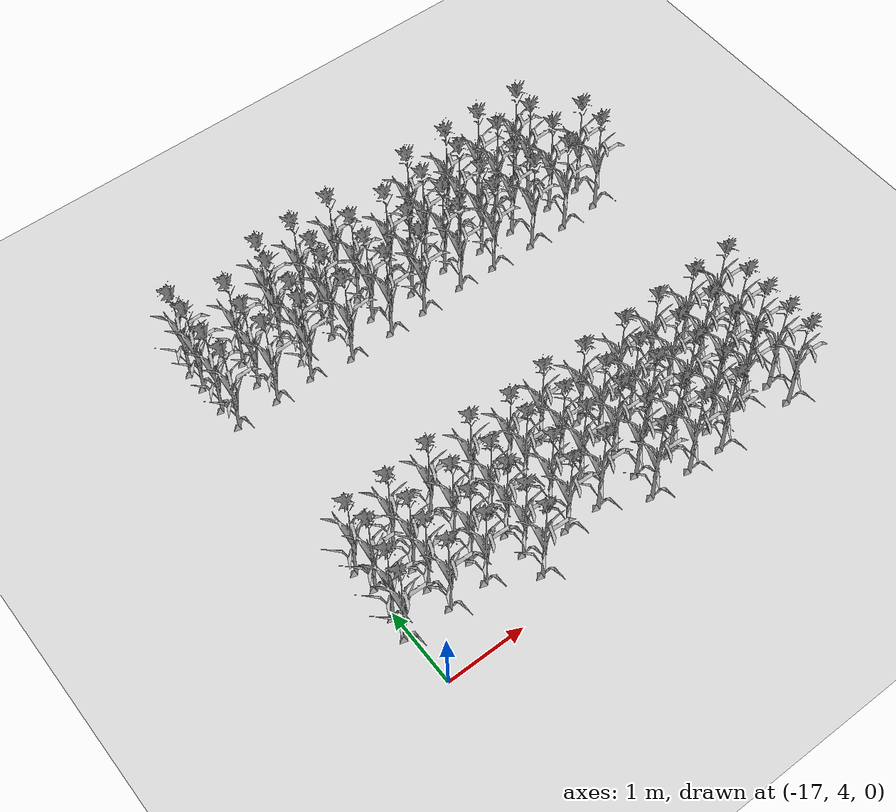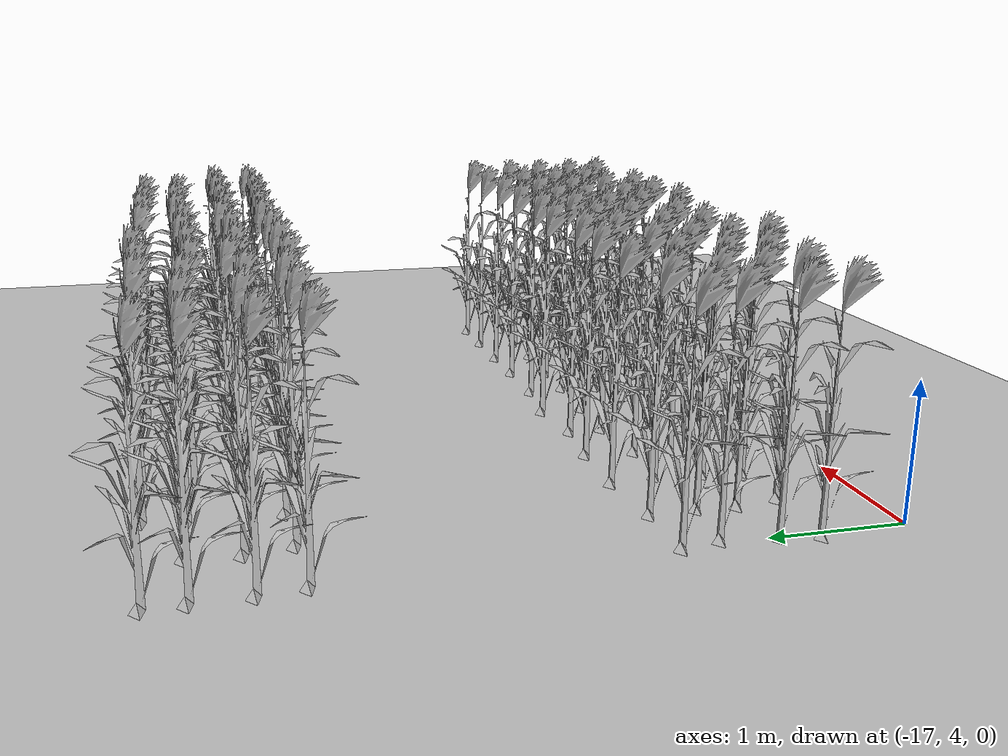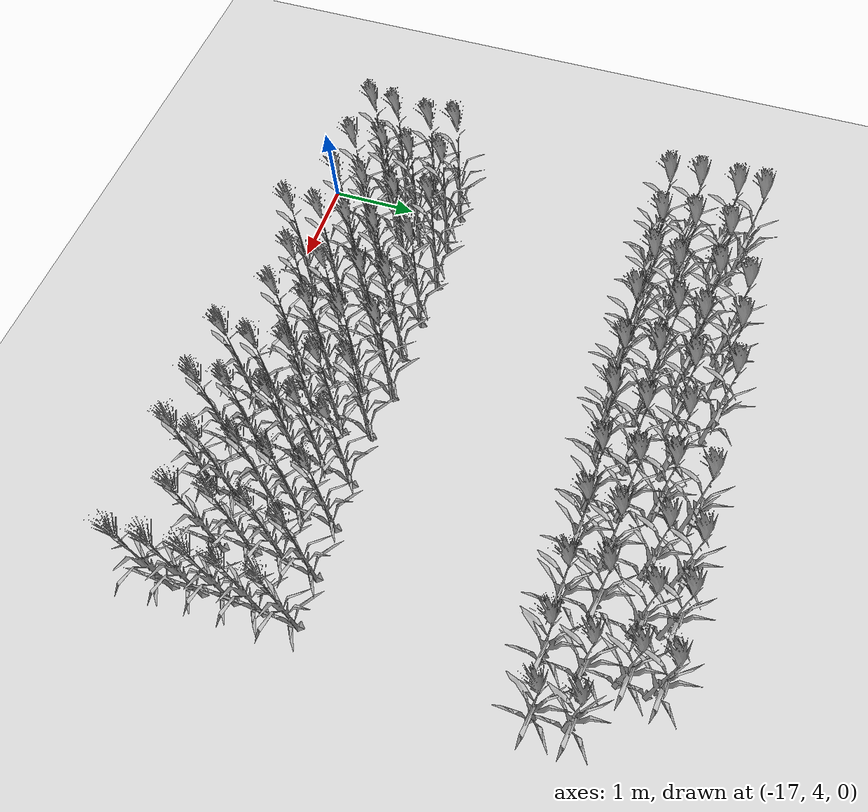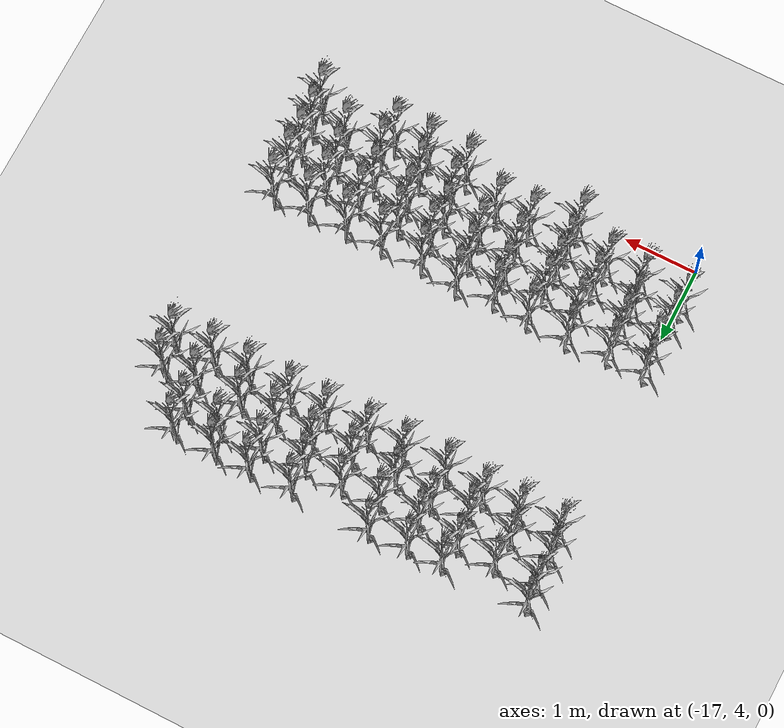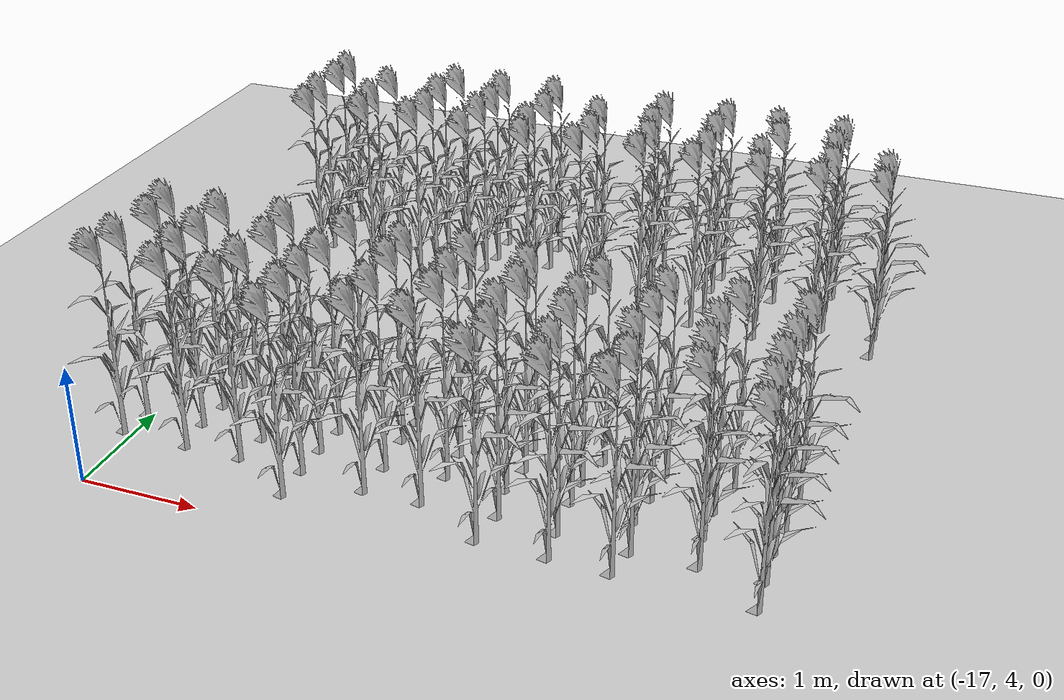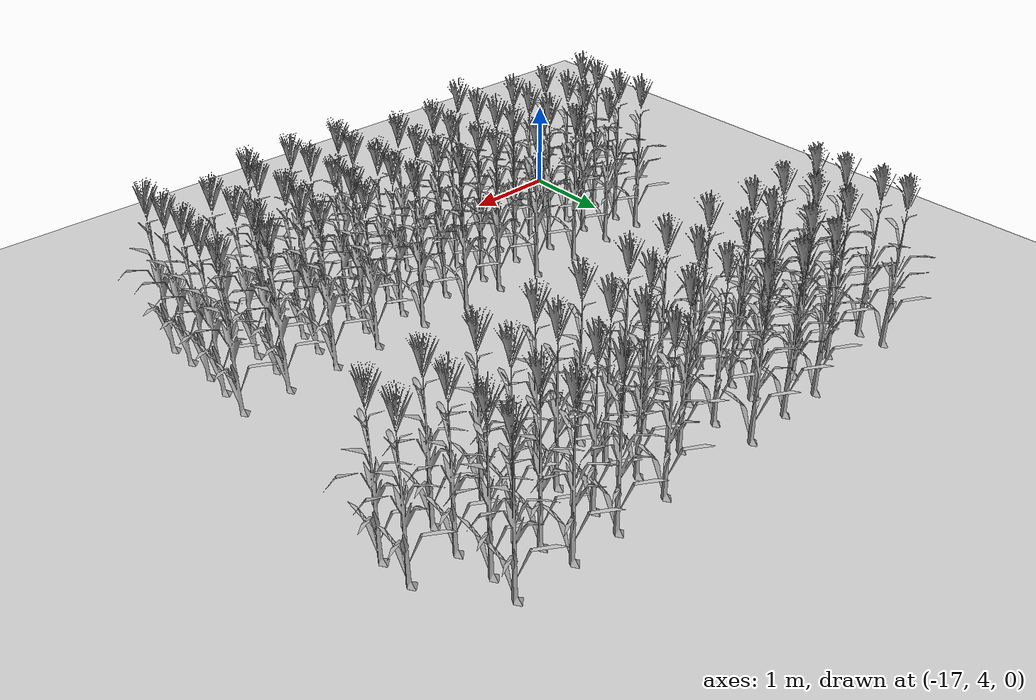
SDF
<sdf version="1.7">
 <world name="farmland_world">
  <model name="ground_plane">
   <static>1</static>
   <link name="link">
    <collision name="collision">
     <geometry><plane><normal>0 0 1</normal><size>40.0 40.0</size></plane></geometry>
     <surface><friction><ode><mu>100</mu><mu2>50</mu2></ode></friction></surface>
    </collision>
    <visual name="visual">
     <cast_shadows>0</cast_shadows>
     <geometry><plane><normal>0 0 1</normal><size>40.0 40.0</size></plane></geometry>
     <material>
      <script><uri>file://media/materials/scripts/gazebo.material</uri><name>Gazebo/Grey</name></script>
     </material>
    </visual>
   </link>
  </model>
  <model name="tree_3_2848">
   <static>1</static>
   <link name="link">
    <collision name="collision">
     <geometry><mesh><uri>model://Corn_low_poly/corn.obj</uri><scale>1 1 1</scale></mesh></geometry>
     <surface><friction><ode><mu>100</mu><mu2>50</mu2></ode></friction></surface>
    </collision>
    <visual name="visual">
     <geometry><mesh><uri>model://Corn_low_poly/corn.obj</uri><scale>1 1 1</scale></mesh></geometry>
    </visual>
   </link>
   <pose>-11.787418182871287 4.345683590737765 0 0 0 0</pose>
  </model>
  <model name="tree_3_2850">
   <static>1</static>
   <link name="link">
    <collision name="collision">
     <geometry><mesh><uri>model://Corn_low_poly/corn.obj</uri><scale>1 1 1</scale></mesh></geometry>
     <surface><friction><ode><mu>100</mu><mu2>50</mu2></ode></friction></surface>
    </collision>
    <visual name="visual">
     <geometry><mesh><uri>model://Corn_low_poly/corn.obj</uri><scale>1 1 1</scale></mesh></geometry>
    </visual>
   </link>
   <pose>-12.836769373734384 4.356543003384404 0 0 0 0</pose>
  </model>
  <model name="tree_3_2851">
   <static>1</static>
   <link name="link">
    <collision name="collision">
     <geometry><mesh><uri>model://Corn_low_poly/corn.obj</uri><scale>1 1 1</scale></mesh></geometry>
     <surface><friction><ode><mu>100</mu><mu2>50</mu2></ode></friction></surface>
    </collision>
    <visual name="visual">
     <geometry><mesh><uri>model://Corn_low_poly/corn.obj</uri><scale>1 1 1</scale></mesh></geometry>
    </visual>
   </link>
   <pose>-13.312083223155954 4.364319888794923 0 0 0 0</pose>
  </model>
  <model name="tree_3_2852">
   <static>1</static>
   <link name="link">
    <collision name="collision">
     <geometry><mesh><uri>model://Corn_low_poly/corn.obj</uri><scale>1 1 1</scale></mesh></geometry>
     <surface><friction><ode><mu>100</mu><mu2>50</mu2></ode></friction></surface>
    </collision>
    <visual name="visual">
     <geometry><mesh><uri>model://Corn_low_poly/corn.obj</uri><scale>1 1 1</scale></mesh></geometry>
    </visual>
   </link>
   <pose>-13.866679624383702 4.3677125205263065 0 0 0 0</pose>
  </model>
  <model name="tree_3_2855">
   <static>1</static>
   <link name="link">
    <collision name="collision">
     <geometry><mesh><uri>model://Corn_low_poly/corn.obj</uri><scale>1 1 1</scale></mesh></geometry>
     <surface><friction><ode><mu>100</mu><mu2>50</mu2></ode></friction></surface>
    </collision>
    <visual name="visual">
     <geometry><mesh><uri>model://Corn_low_poly/corn.obj</uri><scale>1 1 1</scale></mesh></geometry>
    </visual>
   </link>
   <pose>-15.440552177565301 4.369589265628956 0 0 0 0</pose>
  </model>
  <model name="tree_3_2872">
   <static>1</static>
   <link name="link">
    <collision name="collision">
     <geometry><mesh><uri>model://Corn_low_poly/corn.obj</uri><scale>1 1 1</scale></mesh></geometry>
     <surface><friction><ode><mu>100</mu><mu2>50</mu2></ode></friction></surface>
    </collision>
    <visual name="visual">
     <geometry><mesh><uri>model://Corn_low_poly/corn.obj</uri><scale>1 1 1</scale></mesh></geometry>
    </visual>
   </link>
   <pose>-11.80729001943103 4.653368368937612 0 0 0 0</pose>
  </model>
  <model name="tree_3_2873">
   <static>1</static>
   <link name="link">
    <collision name="collision">
     <geometry><mesh><uri>model://Corn_low_poly/corn.obj</uri><scale>1 1 1</scale></mesh></geometry>
     <surface><friction><ode><mu>100</mu><mu2>50</mu2></ode></friction></surface>
    </collision>
    <visual name="visual">
     <geometry><mesh><uri>model://Corn_low_poly/corn.obj</uri><scale>1 1 1</scale></mesh></geometry>
    </visual>
   </link>
   <pose>-12.28616912592144 4.6481315816237485 0 0 0 0</pose>
  </model>
  <model name="tree_3_2874">
   <static>1</static>
   <link name="link">
    <collision name="collision">
     <geometry><mesh><uri>model://Corn_low_poly/corn.obj</uri><scale>1 1 1</scale></mesh></geometry>
     <surface><friction><ode><mu>100</mu><mu2>50</mu2></ode></friction></surface>
    </collision>
    <visual name="visual">
     <geometry><mesh><uri>model://Corn_low_poly/corn.obj</uri><scale>1 1 1</scale></mesh></geometry>
    </visual>
   </link>
   <pose>-12.785372539322633 4.629446120698524 0 0 0 0</pose>
  </model>
  <model name="tree_3_2875">
   <static>1</static>
   <link name="link">
    <collision name="collision">
     <geometry><mesh><uri>model://Corn_low_poly/corn.obj</uri><scale>1 1 1</scale></mesh></geometry>
     <surface><friction><ode><mu>100</mu><mu2>50</mu2></ode></friction></surface>
    </collision>
    <visual name="visual">
     <geometry><mesh><uri>model://Corn_low_poly/corn.obj</uri><scale>1 1 1</scale></mesh></geometry>
    </visual>
   </link>
   <pose>-13.348882805030613 4.661099871495268 0 0 0 0</pose>
  </model>
  <model name="tree_3_2876">
   <static>1</static>
   <link name="link">
    <collision name="collision">
     <geometry><mesh><uri>model://Corn_low_poly/corn.obj</uri><scale>1 1 1</scale></mesh></geometry>
     <surface><friction><ode><mu>100</mu><mu2>50</mu2></ode></friction></surface>
    </collision>
    <visual name="visual">
     <geometry><mesh><uri>model://Corn_low_poly/corn.obj</uri><scale>1 1 1</scale></mesh></geometry>
    </visual>
   </link>
   <pose>-13.821121252733908 4.694012933305805 0 0 0 0</pose>
  </model>
  <model name="tree_3_2877">
   <static>1</static>
   <link name="link">
    <collision name="collision">
     <geometry><mesh><uri>model://Corn_low_poly/corn.obj</uri><scale>1 1 1</scale></mesh></geometry>
     <surface><friction><ode><mu>100</mu><mu2>50</mu2></ode></friction></surface>
    </collision>
    <visual name="visual">
     <geometry><mesh><uri>model://Corn_low_poly/corn.obj</uri><scale>1 1 1</scale></mesh></geometry>
    </visual>
   </link>
   <pose>-14.422754243367242 4.643235991660554 0 0 0 0</pose>
  </model>
  <model name="tree_3_2878">
   <static>1</static>
   <link name="link">
    <collision name="collision">
     <geometry><mesh><uri>model://Corn_low_poly/corn.obj</uri><scale>1 1 1</scale></mesh></geometry>
     <surface><friction><ode><mu>100</mu><mu2>50</mu2></ode></friction></surface>
    </collision>
    <visual name="visual">
     <geometry><mesh><uri>model://Corn_low_poly/corn.obj</uri><scale>1 1 1</scale></mesh></geometry>
    </visual>
   </link>
   <pose>-14.888717014696502 4.631099730078305 0 0 0 0</pose>
  </model>
  <model name="tree_3_2879">
   <static>1</static>
   <link name="link">
    <collision name="collision">
     <geometry><mesh><uri>model://Corn_low_poly/corn.obj</uri><scale>1 1 1</scale></mesh></geometry>
     <surface><friction><ode><mu>100</mu><mu2>50</mu2></ode></friction></surface>
    </collision>
    <visual name="visual">
     <geometry><mesh><uri>model://Corn_low_poly/corn.obj</uri><scale>1 1 1</scale></mesh></geometry>
    </visual>
   </link>
   <pose>-15.445006114458977 4.692413783442298 0 0 0 0</pose>
  </model>
  <model name="tree_3_2880">
   <static>1</static>
   <link name="link">
    <collision name="collision">
     <geometry><mesh><uri>model://Corn_low_poly/corn.obj</uri><scale>1 1 1</scale></mesh></geometry>
     <surface><friction><ode><mu>100</mu><mu2>50</mu2></ode></friction></surface>
    </collision>
    <visual name="visual">
     <geometry><mesh><uri>model://Corn_low_poly/corn.obj</uri><scale>1 1 1</scale></mesh></geometry>
    </visual>
   </link>
   <pose>-15.981374665326786 4.67860731526928 0 0 0 0</pose>
  </model>
  <model name="tree_3_2881">
   <static>1</static>
   <link name="link">
    <collision name="collision">
     <geometry><mesh><uri>model://Corn_low_poly/corn.obj</uri><scale>1 1 1</scale></mesh></geometry>
     <surface><friction><ode><mu>100</mu><mu2>50</mu2></ode></friction></surface>
    </collision>
    <visual name="visual">
     <geometry><mesh><uri>model://Corn_low_poly/corn.obj</uri><scale>1 1 1</scale></mesh></geometry>
    </visual>
   </link>
   <pose>-16.463469612664845 4.672492613097983 0 0 0 0</pose>
  </model>
  <model name="tree_3_2882">
   <static>1</static>
   <link name="link">
    <collision name="collision">
     <geometry><mesh><uri>model://Corn_low_poly/corn.obj</uri><scale>1 1 1</scale></mesh></geometry>
     <surface><friction><ode><mu>100</mu><mu2>50</mu2></ode></friction></surface>
    </collision>
    <visual name="visual">
     <geometry><mesh><uri>model://Corn_low_poly/corn.obj</uri><scale>1 1 1</scale></mesh></geometry>
    </visual>
   </link>
   <pose>-17.04998794201496 4.6854122883601965 0 0 0 0</pose>
  </model>
  <model name="tree_3_2896">
   <static>1</static>
   <link name="link">
    <collision name="collision">
     <geometry><mesh><uri>model://Corn_low_poly/corn.obj</uri><scale>1 1 1</scale></mesh></geometry>
     <surface><friction><ode><mu>100</mu><mu2>50</mu2></ode></friction></surface>
    </collision>
    <visual name="visual">
     <geometry><mesh><uri>model://Corn_low_poly/corn.obj</uri><scale>1 1 1</scale></mesh></geometry>
    </visual>
   </link>
   <pose>-11.821602401073118 4.989360754822888 0 0 0 0</pose>
  </model>
  <model name="tree_3_2897">
   <static>1</static>
   <link name="link">
    <collision name="collision">
     <geometry><mesh><uri>model://Corn_low_poly/corn.obj</uri><scale>1 1 1</scale></mesh></geometry>
     <surface><friction><ode><mu>100</mu><mu2>50</mu2></ode></friction></surface>
    </collision>
    <visual name="visual">
     <geometry><mesh><uri>model://Corn_low_poly/corn.obj</uri><scale>1 1 1</scale></mesh></geometry>
    </visual>
   </link>
   <pose>-12.339196353073518 4.982475300204794 0 0 0 0</pose>
  </model>
  <model name="tree_3_2898">
   <static>1</static>
   <link name="link">
    <collision name="collision">
     <geometry><mesh><uri>model://Corn_low_poly/corn.obj</uri><scale>1 1 1</scale></mesh></geometry>
     <surface><friction><ode><mu>100</mu><mu2>50</mu2></ode></friction></surface>
    </collision>
    <visual name="visual">
     <geometry><mesh><uri>model://Corn_low_poly/corn.obj</uri><scale>1 1 1</scale></mesh></geometry>
    </visual>
   </link>
   <pose>-12.861620071958903 4.987703392328394 0 0 0 0</pose>
  </model>
  <model name="tree_3_2899">
   <static>1</static>
   <link name="link">
    <collision name="collision">
     <geometry><mesh><uri>model://Corn_low_poly/corn.obj</uri><scale>1 1 1</scale></mesh></geometry>
     <surface><friction><ode><mu>100</mu><mu2>50</mu2></ode></friction></surface>
    </collision>
    <visual name="visual">
     <geometry><mesh><uri>model://Corn_low_poly/corn.obj</uri><scale>1 1 1</scale></mesh></geometry>
    </visual>
   </link>
   <pose>-13.373198020450442 5.046744431338564 0 0 0 0</pose>
  </model>
  <model name="tree_3_2900">
   <static>1</static>
   <link name="link">
    <collision name="collision">
     <geometry><mesh><uri>model://Corn_low_poly/corn.obj</uri><scale>1 1 1</scale></mesh></geometry>
     <surface><friction><ode><mu>100</mu><mu2>50</mu2></ode></friction></surface>
    </collision>
    <visual name="visual">
     <geometry><mesh><uri>model://Corn_low_poly/corn.obj</uri><scale>1 1 1</scale></mesh></geometry>
    </visual>
   </link>
   <pose>-13.88795014819522 5.025130307146981 0 0 0 0</pose>
  </model>
  <model name="tree_3_2901">
   <static>1</static>
   <link name="link">
    <collision name="collision">
     <geometry><mesh><uri>model://Corn_low_poly/corn.obj</uri><scale>1 1 1</scale></mesh></geometry>
     <surface><friction><ode><mu>100</mu><mu2>50</mu2></ode></friction></surface>
    </collision>
    <visual name="visual">
     <geometry><mesh><uri>model://Corn_low_poly/corn.obj</uri><scale>1 1 1</scale></mesh></geometry>
    </visual>
   </link>
   <pose>-14.374118336510657 5.023883117925202 0 0 0 0</pose>
  </model>
  <model name="tree_3_2902">
   <static>1</static>
   <link name="link">
    <collision name="collision">
     <geometry><mesh><uri>model://Corn_low_poly/corn.obj</uri><scale>1 1 1</scale></mesh></geometry>
     <surface><friction><ode><mu>100</mu><mu2>50</mu2></ode></friction></surface>
    </collision>
    <visual name="visual">
     <geometry><mesh><uri>model://Corn_low_poly/corn.obj</uri><scale>1 1 1</scale></mesh></geometry>
    </visual>
   </link>
   <pose>-14.867754599025726 4.963997628128189 0 0 0 0</pose>
  </model>
  <model name="tree_3_2903">
   <static>1</static>
   <link name="link">
    <collision name="collision">
     <geometry><mesh><uri>model://Corn_low_poly/corn.obj</uri><scale>1 1 1</scale></mesh></geometry>
     <surface><friction><ode><mu>100</mu><mu2>50</mu2></ode></friction></surface>
    </collision>
    <visual name="visual">
     <geometry><mesh><uri>model://Corn_low_poly/corn.obj</uri><scale>1 1 1</scale></mesh></geometry>
    </visual>
   </link>
   <pose>-15.445996530346344 5.001447909934732 0 0 0 0</pose>
  </model>
  <model name="tree_3_2904">
   <static>1</static>
   <link name="link">
    <collision name="collision">
     <geometry><mesh><uri>model://Corn_low_poly/corn.obj</uri><scale>1 1 1</scale></mesh></geometry>
     <surface><friction><ode><mu>100</mu><mu2>50</mu2></ode></friction></surface>
    </collision>
    <visual name="visual">
     <geometry><mesh><uri>model://Corn_low_poly/corn.obj</uri><scale>1 1 1</scale></mesh></geometry>
    </visual>
   </link>
   <pose>-15.94961357791685 4.981257883045574 0 0 0 0</pose>
  </model>
  <model name="tree_3_2905">
   <static>1</static>
   <link name="link">
    <collision name="collision">
     <geometry><mesh><uri>model://Corn_low_poly/corn.obj</uri><scale>1 1 1</scale></mesh></geometry>
     <surface><friction><ode><mu>100</mu><mu2>50</mu2></ode></friction></surface>
    </collision>
    <visual name="visual">
     <geometry><mesh><uri>model://Corn_low_poly/corn.obj</uri><scale>1 1 1</scale></mesh></geometry>
    </visual>
   </link>
   <pose>-16.50794991925876 4.999771540328189 0 0 0 0</pose>
  </model>
  <model name="tree_3_2906">
   <static>1</static>
   <link name="link">
    <collision name="collision">
     <geometry><mesh><uri>model://Corn_low_poly/corn.obj</uri><scale>1 1 1</scale></mesh></geometry>
     <surface><friction><ode><mu>100</mu><mu2>50</mu2></ode></friction></surface>
    </collision>
    <visual name="visual">
     <geometry><mesh><uri>model://Corn_low_poly/corn.obj</uri><scale>1 1 1</scale></mesh></geometry>
    </visual>
   </link>
   <pose>-17.01225132746731 4.961674455337915 0 0 0 0</pose>
  </model>
  <model name="tree_3_2920">
   <static>1</static>
   <link name="link">
    <collision name="collision">
     <geometry><mesh><uri>model://Corn_low_poly/corn.obj</uri><scale>1 1 1</scale></mesh></geometry>
     <surface><friction><ode><mu>100</mu><mu2>50</mu2></ode></friction></surface>
    </collision>
    <visual name="visual">
     <geometry><mesh><uri>model://Corn_low_poly/corn.obj</uri><scale>1 1 1</scale></mesh></geometry>
    </visual>
   </link>
   <pose>-11.80859554816598 5.300706881931926 0 0 0 0</pose>
  </model>
  <model name="tree_3_2921">
   <static>1</static>
   <link name="link">
    <collision name="collision">
     <geometry><mesh><uri>model://Corn_low_poly/corn.obj</uri><scale>1 1 1</scale></mesh></geometry>
     <surface><friction><ode><mu>100</mu><mu2>50</mu2></ode></friction></surface>
    </collision>
    <visual name="visual">
     <geometry><mesh><uri>model://Corn_low_poly/corn.obj</uri><scale>1 1 1</scale></mesh></geometry>
    </visual>
   </link>
   <pose>-12.346562582742816 5.316119694070568 0 0 0 0</pose>
  </model>
  <model name="tree_3_2922">
   <static>1</static>
   <link name="link">
    <collision name="collision">
     <geometry><mesh><uri>model://Corn_low_poly/corn.obj</uri><scale>1 1 1</scale></mesh></geometry>
     <surface><friction><ode><mu>100</mu><mu2>50</mu2></ode></friction></surface>
    </collision>
    <visual name="visual">
     <geometry><mesh><uri>model://Corn_low_poly/corn.obj</uri><scale>1 1 1</scale></mesh></geometry>
    </visual>
   </link>
   <pose>-12.827746513011721 5.305712901097622 0 0 0 0</pose>
  </model>
  <model name="tree_3_2923">
   <static>1</static>
   <link name="link">
    <collision name="collision">
     <geometry><mesh><uri>model://Corn_low_poly/corn.obj</uri><scale>1 1 1</scale></mesh></geometry>
     <surface><friction><ode><mu>100</mu><mu2>50</mu2></ode></friction></surface>
    </collision>
    <visual name="visual">
     <geometry><mesh><uri>model://Corn_low_poly/corn.obj</uri><scale>1 1 1</scale></mesh></geometry>
    </visual>
   </link>
   <pose>-13.381820550027916 5.321790128650112 0 0 0 0</pose>
  </model>
  <model name="tree_3_2924">
   <static>1</static>
   <link name="link">
    <collision name="collision">
     <geometry><mesh><uri>model://Corn_low_poly/corn.obj</uri><scale>1 1 1</scale></mesh></geometry>
     <surface><friction><ode><mu>100</mu><mu2>50</mu2></ode></friction></surface>
    </collision>
    <visual name="visual">
     <geometry><mesh><uri>model://Corn_low_poly/corn.obj</uri><scale>1 1 1</scale></mesh></geometry>
    </visual>
   </link>
   <pose>-13.845233333370656 5.32576627291684 0 0 0 0</pose>
  </model>
  <model name="tree_3_2925">
   <static>1</static>
   <link name="link">
    <collision name="collision">
     <geometry><mesh><uri>model://Corn_low_poly/corn.obj</uri><scale>1 1 1</scale></mesh></geometry>
     <surface><friction><ode><mu>100</mu><mu2>50</mu2></ode></friction></surface>
    </collision>
    <visual name="visual">
     <geometry><mesh><uri>model://Corn_low_poly/corn.obj</uri><scale>1 1 1</scale></mesh></geometry>
    </visual>
   </link>
   <pose>-14.39804841391622 5.3464494049158064 0 0 0 0</pose>
  </model>
  <model name="tree_3_2926">
   <static>1</static>
   <link name="link">
    <collision name="collision">
     <geometry><mesh><uri>model://Corn_low_poly/corn.obj</uri><scale>1 1 1</scale></mesh></geometry>
     <surface><friction><ode><mu>100</mu><mu2>50</mu2></ode></friction></surface>
    </collision>
    <visual name="visual">
     <geometry><mesh><uri>model://Corn_low_poly/corn.obj</uri><scale>1 1 1</scale></mesh></geometry>
    </visual>
   </link>
   <pose>-14.89986106489467 5.359724085945846 0 0 0 0</pose>
  </model>
  <model name="tree_3_2927">
   <static>1</static>
   <link name="link">
    <collision name="collision">
     <geometry><mesh><uri>model://Corn_low_poly/corn.obj</uri><scale>1 1 1</scale></mesh></geometry>
     <surface><friction><ode><mu>100</mu><mu2>50</mu2></ode></friction></surface>
    </collision>
    <visual name="visual">
     <geometry><mesh><uri>model://Corn_low_poly/corn.obj</uri><scale>1 1 1</scale></mesh></geometry>
    </visual>
   </link>
   <pose>-15.431050010541703 5.2966965685527025 0 0 0 0</pose>
  </model>
  <model name="tree_3_2928">
   <static>1</static>
   <link name="link">
    <collision name="collision">
     <geometry><mesh><uri>model://Corn_low_poly/corn.obj</uri><scale>1 1 1</scale></mesh></geometry>
     <surface><friction><ode><mu>100</mu><mu2>50</mu2></ode></friction></surface>
    </collision>
    <visual name="visual">
     <geometry><mesh><uri>model://Corn_low_poly/corn.obj</uri><scale>1 1 1</scale></mesh></geometry>
    </visual>
   </link>
   <pose>-15.907024747191626 5.340432694332489 0 0 0 0</pose>
  </model>
  <model name="tree_3_2929">
   <static>1</static>
   <link name="link">
    <collision name="collision">
     <geometry><mesh><uri>model://Corn_low_poly/corn.obj</uri><scale>1 1 1</scale></mesh></geometry>
     <surface><friction><ode><mu>100</mu><mu2>50</mu2></ode></friction></surface>
    </collision>
    <visual name="visual">
     <geometry><mesh><uri>model://Corn_low_poly/corn.obj</uri><scale>1 1 1</scale></mesh></geometry>
    </visual>
   </link>
   <pose>-16.49270722520358 5.292517331920373 0 0 0 0</pose>
  </model>
  <model name="tree_3_2930">
   <static>1</static>
   <link name="link">
    <collision name="collision">
     <geometry><mesh><uri>model://Corn_low_poly/corn.obj</uri><scale>1 1 1</scale></mesh></geometry>
     <surface><friction><ode><mu>100</mu><mu2>50</mu2></ode></friction></surface>
    </collision>
    <visual name="visual">
     <geometry><mesh><uri>model://Corn_low_poly/corn.obj</uri><scale>1 1 1</scale></mesh></geometry>
    </visual>
   </link>
   <pose>-16.961977913943578 5.355208950542203 0 0 0 0</pose>
  </model>
  <model name="tree_3_2944">
   <static>1</static>
   <link name="link">
    <collision name="collision">
     <geometry><mesh><uri>model://Corn_low_poly/corn.obj</uri><scale>1 1 1</scale></mesh></geometry>
     <surface><friction><ode><mu>100</mu><mu2>50</mu2></ode></friction></surface>
    </collision>
    <visual name="visual">
     <geometry><mesh><uri>model://Corn_low_poly/corn.obj</uri><scale>1 1 1</scale></mesh></geometry>
    </visual>
   </link>
   <pose>-11.786581599849967 5.670972233544206 0 0 0 0</pose>
  </model>
  <model name="tree_3_2945">
   <static>1</static>
   <link name="link">
    <collision name="collision">
     <geometry><mesh><uri>model://Corn_low_poly/corn.obj</uri><scale>1 1 1</scale></mesh></geometry>
     <surface><friction><ode><mu>100</mu><mu2>50</mu2></ode></friction></surface>
    </collision>
    <visual name="visual">
     <geometry><mesh><uri>model://Corn_low_poly/corn.obj</uri><scale>1 1 1</scale></mesh></geometry>
    </visual>
   </link>
   <pose>-12.279995411848864 5.661194366105497 0 0 0 0</pose>
  </model>
  <model name="tree_3_2946">
   <static>1</static>
   <link name="link">
    <collision name="collision">
     <geometry><mesh><uri>model://Corn_low_poly/corn.obj</uri><scale>1 1 1</scale></mesh></geometry>
     <surface><friction><ode><mu>100</mu><mu2>50</mu2></ode></friction></surface>
    </collision>
    <visual name="visual">
     <geometry><mesh><uri>model://Corn_low_poly/corn.obj</uri><scale>1 1 1</scale></mesh></geometry>
    </visual>
   </link>
   <pose>-12.810406565860838 5.650908077727726 0 0 0 0</pose>
  </model>
  <model name="tree_3_2947">
   <static>1</static>
   <link name="link">
    <collision name="collision">
     <geometry><mesh><uri>model://Corn_low_poly/corn.obj</uri><scale>1 1 1</scale></mesh></geometry>
     <surface><friction><ode><mu>100</mu><mu2>50</mu2></ode></friction></surface>
    </collision>
    <visual name="visual">
     <geometry><mesh><uri>model://Corn_low_poly/corn.obj</uri><scale>1 1 1</scale></mesh></geometry>
    </visual>
   </link>
   <pose>-13.30890923611246 5.639534962374338 0 0 0 0</pose>
  </model>
  <model name="tree_3_2948">
   <static>1</static>
   <link name="link">
    <collision name="collision">
     <geometry><mesh><uri>model://Corn_low_poly/corn.obj</uri><scale>1 1 1</scale></mesh></geometry>
     <surface><friction><ode><mu>100</mu><mu2>50</mu2></ode></friction></surface>
    </collision>
    <visual name="visual">
     <geometry><mesh><uri>model://Corn_low_poly/corn.obj</uri><scale>1 1 1</scale></mesh></geometry>
    </visual>
   </link>
   <pose>-13.881716821425654 5.634242797053889 0 0 0 0</pose>
  </model>
  <model name="tree_3_2949">
   <static>1</static>
   <link name="link">
    <collision name="collision">
     <geometry><mesh><uri>model://Corn_low_poly/corn.obj</uri><scale>1 1 1</scale></mesh></geometry>
     <surface><friction><ode><mu>100</mu><mu2>50</mu2></ode></friction></surface>
    </collision>
    <visual name="visual">
     <geometry><mesh><uri>model://Corn_low_poly/corn.obj</uri><scale>1 1 1</scale></mesh></geometry>
    </visual>
   </link>
   <pose>-14.399977994669563 5.699039657037447 0 0 0 0</pose>
  </model>
  <model name="tree_3_2950">
   <static>1</static>
   <link name="link">
    <collision name="collision">
     <geometry><mesh><uri>model://Corn_low_poly/corn.obj</uri><scale>1 1 1</scale></mesh></geometry>
     <surface><friction><ode><mu>100</mu><mu2>50</mu2></ode></friction></surface>
    </collision>
    <visual name="visual">
     <geometry><mesh><uri>model://Corn_low_poly/corn.obj</uri><scale>1 1 1</scale></mesh></geometry>
    </visual>
   </link>
   <pose>-14.904731727325315 5.631818877244838 0 0 0 0</pose>
  </model>
  <model name="tree_3_2951">
   <static>1</static>
   <link name="link">
    <collision name="collision">
     <geometry><mesh><uri>model://Corn_low_poly/corn.obj</uri><scale>1 1 1</scale></mesh></geometry>
     <surface><friction><ode><mu>100</mu><mu2>50</mu2></ode></friction></surface>
    </collision>
    <visual name="visual">
     <geometry><mesh><uri>model://Corn_low_poly/corn.obj</uri><scale>1 1 1</scale></mesh></geometry>
    </visual>
   </link>
   <pose>-15.401517227675193 5.683333834093279 0 0 0 0</pose>
  </model>
  <model name="tree_3_2952">
   <static>1</static>
   <link name="link">
    <collision name="collision">
     <geometry><mesh><uri>model://Corn_low_poly/corn.obj</uri><scale>1 1 1</scale></mesh></geometry>
     <surface><friction><ode><mu>100</mu><mu2>50</mu2></ode></friction></surface>
    </collision>
    <visual name="visual">
     <geometry><mesh><uri>model://Corn_low_poly/corn.obj</uri><scale>1 1 1</scale></mesh></geometry>
    </visual>
   </link>
   <pose>-15.955428057313904 5.695486162413729 0 0 0 0</pose>
  </model>
  <model name="tree_3_2953">
   <static>1</static>
   <link name="link">
    <collision name="collision">
     <geometry><mesh><uri>model://Corn_low_poly/corn.obj</uri><scale>1 1 1</scale></mesh></geometry>
     <surface><friction><ode><mu>100</mu><mu2>50</mu2></ode></friction></surface>
    </collision>
    <visual name="visual">
     <geometry><mesh><uri>model://Corn_low_poly/corn.obj</uri><scale>1 1 1</scale></mesh></geometry>
    </visual>
   </link>
   <pose>-16.508444231351238 5.6426197099609885 0 0 0 0</pose>
  </model>
  <model name="tree_3_2954">
   <static>1</static>
   <link name="link">
    <collision name="collision">
     <geometry><mesh><uri>model://Corn_low_poly/corn.obj</uri><scale>1 1 1</scale></mesh></geometry>
     <surface><friction><ode><mu>100</mu><mu2>50</mu2></ode></friction></surface>
    </collision>
    <visual name="visual">
     <geometry><mesh><uri>model://Corn_low_poly/corn.obj</uri><scale>1 1 1</scale></mesh></geometry>
    </visual>
   </link>
   <pose>-17.013696264046775 5.643794161866564 0 0 0 0</pose>
  </model>
  <model name="tree_3_2958">
   <static>1</static>
   <link name="link">
    <collision name="collision">
     <geometry><mesh><uri>model://Corn_low_poly/corn.obj</uri><scale>1 1 1</scale></mesh></geometry>
     <surface><friction><ode><mu>100</mu><mu2>50</mu2></ode></friction></surface>
    </collision>
    <visual name="visual">
     <geometry><mesh><uri>model://Corn_low_poly/corn.obj</uri><scale>1 1 1</scale></mesh></geometry>
    </visual>
   </link>
   <pose>-11.642926347399065 8.002024002727238 0 0 0 0</pose>
  </model>
  <model name="tree_3_2959">
   <static>1</static>
   <link name="link">
    <collision name="collision">
     <geometry><mesh><uri>model://Corn_low_poly/corn.obj</uri><scale>1 1 1</scale></mesh></geometry>
     <surface><friction><ode><mu>100</mu><mu2>50</mu2></ode></friction></surface>
    </collision>
    <visual name="visual">
     <geometry><mesh><uri>model://Corn_low_poly/corn.obj</uri><scale>1 1 1</scale></mesh></geometry>
    </visual>
   </link>
   <pose>-12.17233872923745 7.9712121355089005 0 0 0 0</pose>
  </model>
  <model name="tree_3_2960">
   <static>1</static>
   <link name="link">
    <collision name="collision">
     <geometry><mesh><uri>model://Corn_low_poly/corn.obj</uri><scale>1 1 1</scale></mesh></geometry>
     <surface><friction><ode><mu>100</mu><mu2>50</mu2></ode></friction></surface>
    </collision>
    <visual name="visual">
     <geometry><mesh><uri>model://Corn_low_poly/corn.obj</uri><scale>1 1 1</scale></mesh></geometry>
    </visual>
   </link>
   <pose>-12.67733080884359 7.981035069822413 0 0 0 0</pose>
  </model>
  <model name="tree_3_2961">
   <static>1</static>
   <link name="link">
    <collision name="collision">
     <geometry><mesh><uri>model://Corn_low_poly/corn.obj</uri><scale>1 1 1</scale></mesh></geometry>
     <surface><friction><ode><mu>100</mu><mu2>50</mu2></ode></friction></surface>
    </collision>
    <visual name="visual">
     <geometry><mesh><uri>model://Corn_low_poly/corn.obj</uri><scale>1 1 1</scale></mesh></geometry>
    </visual>
   </link>
   <pose>-13.261827987622407 8.001322561860443 0 0 0 0</pose>
  </model>
  <model name="tree_3_2962">
   <static>1</static>
   <link name="link">
    <collision name="collision">
     <geometry><mesh><uri>model://Corn_low_poly/corn.obj</uri><scale>1 1 1</scale></mesh></geometry>
     <surface><friction><ode><mu>100</mu><mu2>50</mu2></ode></friction></surface>
    </collision>
    <visual name="visual">
     <geometry><mesh><uri>model://Corn_low_poly/corn.obj</uri><scale>1 1 1</scale></mesh></geometry>
    </visual>
   </link>
   <pose>-13.764772510887044 8.011922464909533 0 0 0 0</pose>
  </model>
  <model name="tree_3_2963">
   <static>1</static>
   <link name="link">
    <collision name="collision">
     <geometry><mesh><uri>model://Corn_low_poly/corn.obj</uri><scale>1 1 1</scale></mesh></geometry>
     <surface><friction><ode><mu>100</mu><mu2>50</mu2></ode></friction></surface>
    </collision>
    <visual name="visual">
     <geometry><mesh><uri>model://Corn_low_poly/corn.obj</uri><scale>1 1 1</scale></mesh></geometry>
    </visual>
   </link>
   <pose>-14.336390013594748 7.988425499019388 0 0 0 0</pose>
  </model>
  <model name="tree_3_2964">
   <static>1</static>
   <link name="link">
    <collision name="collision">
     <geometry><mesh><uri>model://Corn_low_poly/corn.obj</uri><scale>1 1 1</scale></mesh></geometry>
     <surface><friction><ode><mu>100</mu><mu2>50</mu2></ode></friction></surface>
    </collision>
    <visual name="visual">
     <geometry><mesh><uri>model://Corn_low_poly/corn.obj</uri><scale>1 1 1</scale></mesh></geometry>
    </visual>
   </link>
   <pose>-14.831372953732053 7.9761541989573965 0 0 0 0</pose>
  </model>
  <model name="tree_3_2965">
   <static>1</static>
   <link name="link">
    <collision name="collision">
     <geometry><mesh><uri>model://Corn_low_poly/corn.obj</uri><scale>1 1 1</scale></mesh></geometry>
     <surface><friction><ode><mu>100</mu><mu2>50</mu2></ode></friction></surface>
    </collision>
    <visual name="visual">
     <geometry><mesh><uri>model://Corn_low_poly/corn.obj</uri><scale>1 1 1</scale></mesh></geometry>
    </visual>
   </link>
   <pose>-15.409874326223767 7.966234041171988 0 0 0 0</pose>
  </model>
  <model name="tree_3_2966">
   <static>1</static>
   <link name="link">
    <collision name="collision">
     <geometry><mesh><uri>model://Corn_low_poly/corn.obj</uri><scale>1 1 1</scale></mesh></geometry>
     <surface><friction><ode><mu>100</mu><mu2>50</mu2></ode></friction></surface>
    </collision>
    <visual name="visual">
     <geometry><mesh><uri>model://Corn_low_poly/corn.obj</uri><scale>1 1 1</scale></mesh></geometry>
    </visual>
   </link>
   <pose>-15.949496397397846 8.031184232825376 0 0 0 0</pose>
  </model>
  <model name="tree_3_2967">
   <static>1</static>
   <link name="link">
    <collision name="collision">
     <geometry><mesh><uri>model://Corn_low_poly/corn.obj</uri><scale>1 1 1</scale></mesh></geometry>
     <surface><friction><ode><mu>100</mu><mu2>50</mu2></ode></friction></surface>
    </collision>
    <visual name="visual">
     <geometry><mesh><uri>model://Corn_low_poly/corn.obj</uri><scale>1 1 1</scale></mesh></geometry>
    </visual>
   </link>
   <pose>-16.435792696450033 8.014037603634648 0 0 0 0</pose>
  </model>
  <model name="tree_3_2968">
   <static>1</static>
   <link name="link">
    <collision name="collision">
     <geometry><mesh><uri>model://Corn_low_poly/corn.obj</uri><scale>1 1 1</scale></mesh></geometry>
     <surface><friction><ode><mu>100</mu><mu2>50</mu2></ode></friction></surface>
    </collision>
    <visual name="visual">
     <geometry><mesh><uri>model://Corn_low_poly/corn.obj</uri><scale>1 1 1</scale></mesh></geometry>
    </visual>
   </link>
   <pose>-16.98451533419972 7.9915601161312 0 0 0 0</pose>
  </model>
  <model name="tree_3_2972">
   <static>1</static>
   <link name="link">
    <collision name="collision">
     <geometry><mesh><uri>model://Corn_low_poly/corn.obj</uri><scale>1 1 1</scale></mesh></geometry>
     <surface><friction><ode><mu>100</mu><mu2>50</mu2></ode></friction></surface>
    </collision>
    <visual name="visual">
     <geometry><mesh><uri>model://Corn_low_poly/corn.obj</uri><scale>1 1 1</scale></mesh></geometry>
    </visual>
   </link>
   <pose>-11.659913989742314 8.33831275124549 0 0 0 0</pose>
  </model>
  <model name="tree_3_2973">
   <static>1</static>
   <link name="link">
    <collision name="collision">
     <geometry><mesh><uri>model://Corn_low_poly/corn.obj</uri><scale>1 1 1</scale></mesh></geometry>
     <surface><friction><ode><mu>100</mu><mu2>50</mu2></ode></friction></surface>
    </collision>
    <visual name="visual">
     <geometry><mesh><uri>model://Corn_low_poly/corn.obj</uri><scale>1 1 1</scale></mesh></geometry>
    </visual>
   </link>
   <pose>-12.124654627531525 8.323489546979465 0 0 0 0</pose>
  </model>
  <model name="tree_3_2974">
   <static>1</static>
   <link name="link">
    <collision name="collision">
     <geometry><mesh><uri>model://Corn_low_poly/corn.obj</uri><scale>1 1 1</scale></mesh></geometry>
     <surface><friction><ode><mu>100</mu><mu2>50</mu2></ode></friction></surface>
    </collision>
    <visual name="visual">
     <geometry><mesh><uri>model://Corn_low_poly/corn.obj</uri><scale>1 1 1</scale></mesh></geometry>
    </visual>
   </link>
   <pose>-12.731390294316553 8.311484009139749 0 0 0 0</pose>
  </model>
  <model name="tree_3_2975">
   <static>1</static>
   <link name="link">
    <collision name="collision">
     <geometry><mesh><uri>model://Corn_low_poly/corn.obj</uri><scale>1 1 1</scale></mesh></geometry>
     <surface><friction><ode><mu>100</mu><mu2>50</mu2></ode></friction></surface>
    </collision>
    <visual name="visual">
     <geometry><mesh><uri>model://Corn_low_poly/corn.obj</uri><scale>1 1 1</scale></mesh></geometry>
    </visual>
   </link>
   <pose>-13.215812465262472 8.30332376717564 0 0 0 0</pose>
  </model>
  <model name="tree_3_2976">
   <static>1</static>
   <link name="link">
    <collision name="collision">
     <geometry><mesh><uri>model://Corn_low_poly/corn.obj</uri><scale>1 1 1</scale></mesh></geometry>
     <surface><friction><ode><mu>100</mu><mu2>50</mu2></ode></friction></surface>
    </collision>
    <visual name="visual">
     <geometry><mesh><uri>model://Corn_low_poly/corn.obj</uri><scale>1 1 1</scale></mesh></geometry>
    </visual>
   </link>
   <pose>-13.7552273829496 8.34632062987124 0 0 0 0</pose>
  </model>
  <model name="tree_3_2977">
   <static>1</static>
   <link name="link">
    <collision name="collision">
     <geometry><mesh><uri>model://Corn_low_poly/corn.obj</uri><scale>1 1 1</scale></mesh></geometry>
     <surface><friction><ode><mu>100</mu><mu2>50</mu2></ode></friction></surface>
    </collision>
    <visual name="visual">
     <geometry><mesh><uri>model://Corn_low_poly/corn.obj</uri><scale>1 1 1</scale></mesh></geometry>
    </visual>
   </link>
   <pose>-14.283470481093378 8.296136995608016 0 0 0 0</pose>
  </model>
  <model name="tree_3_2978">
   <static>1</static>
   <link name="link">
    <collision name="collision">
     <geometry><mesh><uri>model://Corn_low_poly/corn.obj</uri><scale>1 1 1</scale></mesh></geometry>
     <surface><friction><ode><mu>100</mu><mu2>50</mu2></ode></friction></surface>
    </collision>
    <visual name="visual">
     <geometry><mesh><uri>model://Corn_low_poly/corn.obj</uri><scale>1 1 1</scale></mesh></geometry>
    </visual>
   </link>
   <pose>-14.886462549256642 8.292189091417175 0 0 0 0</pose>
  </model>
  <model name="tree_3_2979">
   <static>1</static>
   <link name="link">
    <collision name="collision">
     <geometry><mesh><uri>model://Corn_low_poly/corn.obj</uri><scale>1 1 1</scale></mesh></geometry>
     <surface><friction><ode><mu>100</mu><mu2>50</mu2></ode></friction></surface>
    </collision>
    <visual name="visual">
     <geometry><mesh><uri>model://Corn_low_poly/corn.obj</uri><scale>1 1 1</scale></mesh></geometry>
    </visual>
   </link>
   <pose>-15.408343836311737 8.368612458702822 0 0 0 0</pose>
  </model>
  <model name="tree_3_2980">
   <static>1</static>
   <link name="link">
    <collision name="collision">
     <geometry><mesh><uri>model://Corn_low_poly/corn.obj</uri><scale>1 1 1</scale></mesh></geometry>
     <surface><friction><ode><mu>100</mu><mu2>50</mu2></ode></friction></surface>
    </collision>
    <visual name="visual">
     <geometry><mesh><uri>model://Corn_low_poly/corn.obj</uri><scale>1 1 1</scale></mesh></geometry>
    </visual>
   </link>
   <pose>-15.896802113369638 8.287341242655046 0 0 0 0</pose>
  </model>
  <model name="tree_3_2981">
   <static>1</static>
   <link name="link">
    <collision name="collision">
     <geometry><mesh><uri>model://Corn_low_poly/corn.obj</uri><scale>1 1 1</scale></mesh></geometry>
     <surface><friction><ode><mu>100</mu><mu2>50</mu2></ode></friction></surface>
    </collision>
    <visual name="visual">
     <geometry><mesh><uri>model://Corn_low_poly/corn.obj</uri><scale>1 1 1</scale></mesh></geometry>
    </visual>
   </link>
   <pose>-16.489562600152297 8.344636245278853 0 0 0 0</pose>
  </model>
  <model name="tree_3_2982">
   <static>1</static>
   <link name="link">
    <collision name="collision">
     <geometry><mesh><uri>model://Corn_low_poly/corn.obj</uri><scale>1 1 1</scale></mesh></geometry>
     <surface><friction><ode><mu>100</mu><mu2>50</mu2></ode></friction></surface>
    </collision>
    <visual name="visual">
     <geometry><mesh><uri>model://Corn_low_poly/corn.obj</uri><scale>1 1 1</scale></mesh></geometry>
    </visual>
   </link>
   <pose>-17.017624997275878 8.305405969375213 0 0 0 0</pose>
  </model>
  <model name="tree_3_2987">
   <static>1</static>
   <link name="link">
    <collision name="collision">
     <geometry><mesh><uri>model://Corn_low_poly/corn.obj</uri><scale>1 1 1</scale></mesh></geometry>
     <surface><friction><ode><mu>100</mu><mu2>50</mu2></ode></friction></surface>
    </collision>
    <visual name="visual">
     <geometry><mesh><uri>model://Corn_low_poly/corn.obj</uri><scale>1 1 1</scale></mesh></geometry>
    </visual>
   </link>
   <pose>-12.169992612015657 8.69328787954828 0 0 0 0</pose>
  </model>
  <model name="tree_3_2988">
   <static>1</static>
   <link name="link">
    <collision name="collision">
     <geometry><mesh><uri>model://Corn_low_poly/corn.obj</uri><scale>1 1 1</scale></mesh></geometry>
     <surface><friction><ode><mu>100</mu><mu2>50</mu2></ode></friction></surface>
    </collision>
    <visual name="visual">
     <geometry><mesh><uri>model://Corn_low_poly/corn.obj</uri><scale>1 1 1</scale></mesh></geometry>
    </visual>
   </link>
   <pose>-12.65652047427426 8.71301754366917 0 0 0 0</pose>
  </model>
  <model name="tree_3_2989">
   <static>1</static>
   <link name="link">
    <collision name="collision">
     <geometry><mesh><uri>model://Corn_low_poly/corn.obj</uri><scale>1 1 1</scale></mesh></geometry>
     <surface><friction><ode><mu>100</mu><mu2>50</mu2></ode></friction></surface>
    </collision>
    <visual name="visual">
     <geometry><mesh><uri>model://Corn_low_poly/corn.obj</uri><scale>1 1 1</scale></mesh></geometry>
    </visual>
   </link>
   <pose>-13.242400125195724 8.705283379464454 0 0 0 0</pose>
  </model>
  <model name="tree_3_2990">
   <static>1</static>
   <link name="link">
    <collision name="collision">
     <geometry><mesh><uri>model://Corn_low_poly/corn.obj</uri><scale>1 1 1</scale></mesh></geometry>
     <surface><friction><ode><mu>100</mu><mu2>50</mu2></ode></friction></surface>
    </collision>
    <visual name="visual">
     <geometry><mesh><uri>model://Corn_low_poly/corn.obj</uri><scale>1 1 1</scale></mesh></geometry>
    </visual>
   </link>
   <pose>-13.81253372118461 8.654692949169549 0 0 0 0</pose>
  </model>
  <model name="tree_3_2991">
   <static>1</static>
   <link name="link">
    <collision name="collision">
     <geometry><mesh><uri>model://Corn_low_poly/corn.obj</uri><scale>1 1 1</scale></mesh></geometry>
     <surface><friction><ode><mu>100</mu><mu2>50</mu2></ode></friction></surface>
    </collision>
    <visual name="visual">
     <geometry><mesh><uri>model://Corn_low_poly/corn.obj</uri><scale>1 1 1</scale></mesh></geometry>
    </visual>
   </link>
   <pose>-14.333327876105018 8.673785040629593 0 0 0 0</pose>
  </model>
  <model name="tree_3_2992">
   <static>1</static>
   <link name="link">
    <collision name="collision">
     <geometry><mesh><uri>model://Corn_low_poly/corn.obj</uri><scale>1 1 1</scale></mesh></geometry>
     <surface><friction><ode><mu>100</mu><mu2>50</mu2></ode></friction></surface>
    </collision>
    <visual name="visual">
     <geometry><mesh><uri>model://Corn_low_poly/corn.obj</uri><scale>1 1 1</scale></mesh></geometry>
    </visual>
   </link>
   <pose>-14.842724974775628 8.636125035355873 0 0 0 0</pose>
  </model>
  <model name="tree_3_2993">
   <static>1</static>
   <link name="link">
    <collision name="collision">
     <geometry><mesh><uri>model://Corn_low_poly/corn.obj</uri><scale>1 1 1</scale></mesh></geometry>
     <surface><friction><ode><mu>100</mu><mu2>50</mu2></ode></friction></surface>
    </collision>
    <visual name="visual">
     <geometry><mesh><uri>model://Corn_low_poly/corn.obj</uri><scale>1 1 1</scale></mesh></geometry>
    </visual>
   </link>
   <pose>-15.380951479917556 8.62659075600734 0 0 0 0</pose>
  </model>
  <model name="tree_3_2994">
   <static>1</static>
   <link name="link">
    <collision name="collision">
     <geometry><mesh><uri>model://Corn_low_poly/corn.obj</uri><scale>1 1 1</scale></mesh></geometry>
     <surface><friction><ode><mu>100</mu><mu2>50</mu2></ode></friction></surface>
    </collision>
    <visual name="visual">
     <geometry><mesh><uri>model://Corn_low_poly/corn.obj</uri><scale>1 1 1</scale></mesh></geometry>
    </visual>
   </link>
   <pose>-15.94115538751636 8.68430832667971 0 0 0 0</pose>
  </model>
  <model name="tree_3_2995">
   <static>1</static>
   <link name="link">
    <collision name="collision">
     <geometry><mesh><uri>model://Corn_low_poly/corn.obj</uri><scale>1 1 1</scale></mesh></geometry>
     <surface><friction><ode><mu>100</mu><mu2>50</mu2></ode></friction></surface>
    </collision>
    <visual name="visual">
     <geometry><mesh><uri>model://Corn_low_poly/corn.obj</uri><scale>1 1 1</scale></mesh></geometry>
    </visual>
   </link>
   <pose>-16.463772663060155 8.705376339310808 0 0 0 0</pose>
  </model>
  <model name="tree_3_2996">
   <static>1</static>
   <link name="link">
    <collision name="collision">
     <geometry><mesh><uri>model://Corn_low_poly/corn.obj</uri><scale>1 1 1</scale></mesh></geometry>
     <surface><friction><ode><mu>100</mu><mu2>50</mu2></ode></friction></surface>
    </collision>
    <visual name="visual">
     <geometry><mesh><uri>model://Corn_low_poly/corn.obj</uri><scale>1 1 1</scale></mesh></geometry>
    </visual>
   </link>
   <pose>-17.02322772182501 8.691400037517077 0 0 0 0</pose>
  </model>
  <model name="tree_3_3001">
   <static>1</static>
   <link name="link">
    <collision name="collision">
     <geometry><mesh><uri>model://Corn_low_poly/corn.obj</uri><scale>1 1 1</scale></mesh></geometry>
     <surface><friction><ode><mu>100</mu><mu2>50</mu2></ode></friction></surface>
    </collision>
    <visual name="visual">
     <geometry><mesh><uri>model://Corn_low_poly/corn.obj</uri><scale>1 1 1</scale></mesh></geometry>
    </visual>
   </link>
   <pose>-12.15188478743853 8.983422672766013 0 0 0 0</pose>
  </model>
  <model name="tree_3_3002">
   <static>1</static>
   <link name="link">
    <collision name="collision">
     <geometry><mesh><uri>model://Corn_low_poly/corn.obj</uri><scale>1 1 1</scale></mesh></geometry>
     <surface><friction><ode><mu>100</mu><mu2>50</mu2></ode></friction></surface>
    </collision>
    <visual name="visual">
     <geometry><mesh><uri>model://Corn_low_poly/corn.obj</uri><scale>1 1 1</scale></mesh></geometry>
    </visual>
   </link>
   <pose>-12.72800109885301 8.996233261964674 0 0 0 0</pose>
  </model>
  <model name="tree_3_3003">
   <static>1</static>
   <link name="link">
    <collision name="collision">
     <geometry><mesh><uri>model://Corn_low_poly/corn.obj</uri><scale>1 1 1</scale></mesh></geometry>
     <surface><friction><ode><mu>100</mu><mu2>50</mu2></ode></friction></surface>
    </collision>
    <visual name="visual">
     <geometry><mesh><uri>model://Corn_low_poly/corn.obj</uri><scale>1 1 1</scale></mesh></geometry>
    </visual>
   </link>
   <pose>-13.211431191332865 9.000895019250892 0 0 0 0</pose>
  </model>
  <model name="tree_3_3004">
   <static>1</static>
   <link name="link">
    <collision name="collision">
     <geometry><mesh><uri>model://Corn_low_poly/corn.obj</uri><scale>1 1 1</scale></mesh></geometry>
     <surface><friction><ode><mu>100</mu><mu2>50</mu2></ode></friction></surface>
    </collision>
    <visual name="visual">
     <geometry><mesh><uri>model://Corn_low_poly/corn.obj</uri><scale>1 1 1</scale></mesh></geometry>
    </visual>
   </link>
   <pose>-13.795091120030428 8.982855793552645 0 0 0 0</pose>
  </model>
  <model name="tree_3_3006">
   <static>1</static>
   <link name="link">
    <collision name="collision">
     <geometry><mesh><uri>model://Corn_low_poly/corn.obj</uri><scale>1 1 1</scale></mesh></geometry>
     <surface><friction><ode><mu>100</mu><mu2>50</mu2></ode></friction></surface>
    </collision>
    <visual name="visual">
     <geometry><mesh><uri>model://Corn_low_poly/corn.obj</uri><scale>1 1 1</scale></mesh></geometry>
    </visual>
   </link>
   <pose>-14.883202011855435 9.020520468513125 0 0 0 0</pose>
  </model>
  <model name="tree_3_3007">
   <static>1</static>
   <link name="link">
    <collision name="collision">
     <geometry><mesh><uri>model://Corn_low_poly/corn.obj</uri><scale>1 1 1</scale></mesh></geometry>
     <surface><friction><ode><mu>100</mu><mu2>50</mu2></ode></friction></surface>
    </collision>
    <visual name="visual">
     <geometry><mesh><uri>model://Corn_low_poly/corn.obj</uri><scale>1 1 1</scale></mesh></geometry>
    </visual>
   </link>
   <pose>-15.404197776676764 8.982413973702032 0 0 0 0</pose>
  </model>
  <model name="tree_3_3008">
   <static>1</static>
   <link name="link">
    <collision name="collision">
     <geometry><mesh><uri>model://Corn_low_poly/corn.obj</uri><scale>1 1 1</scale></mesh></geometry>
     <surface><friction><ode><mu>100</mu><mu2>50</mu2></ode></friction></surface>
    </collision>
    <visual name="visual">
     <geometry><mesh><uri>model://Corn_low_poly/corn.obj</uri><scale>1 1 1</scale></mesh></geometry>
    </visual>
   </link>
   <pose>-15.87531147935796 8.977310509619928 0 0 0 0</pose>
  </model>
  <model name="tree_3_3010">
   <static>1</static>
   <link name="link">
    <collision name="collision">
     <geometry><mesh><uri>model://Corn_low_poly/corn.obj</uri><scale>1 1 1</scale></mesh></geometry>
     <surface><friction><ode><mu>100</mu><mu2>50</mu2></ode></friction></surface>
    </collision>
    <visual name="visual">
     <geometry><mesh><uri>model://Corn_low_poly/corn.obj</uri><scale>1 1 1</scale></mesh></geometry>
    </visual>
   </link>
   <pose>-17.03436763218898 8.958411487852485 0 0 0 0</pose>
  </model>
 </world>
</sdf>
